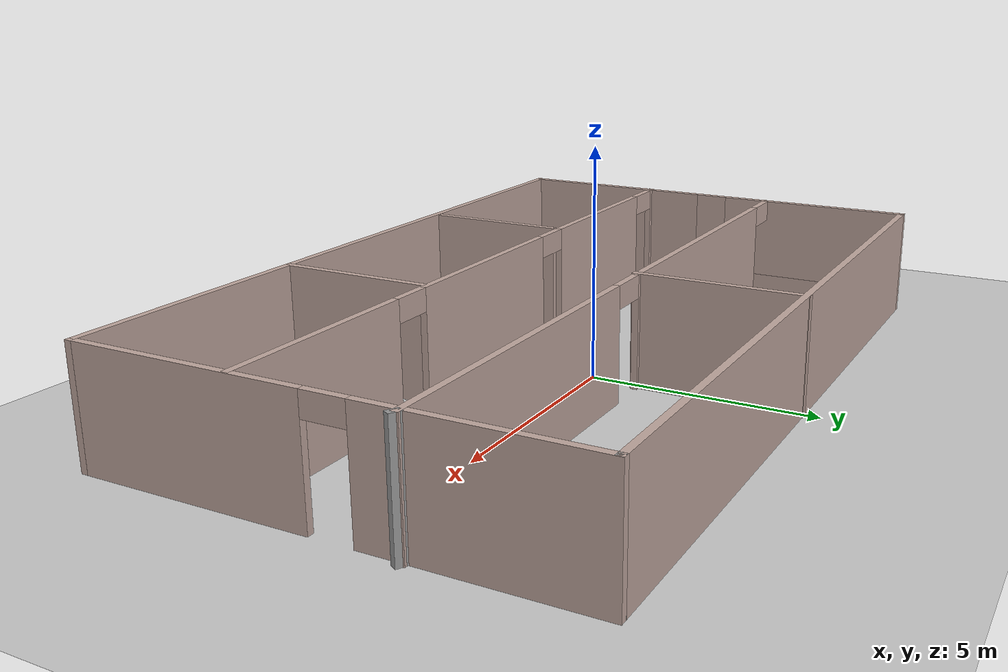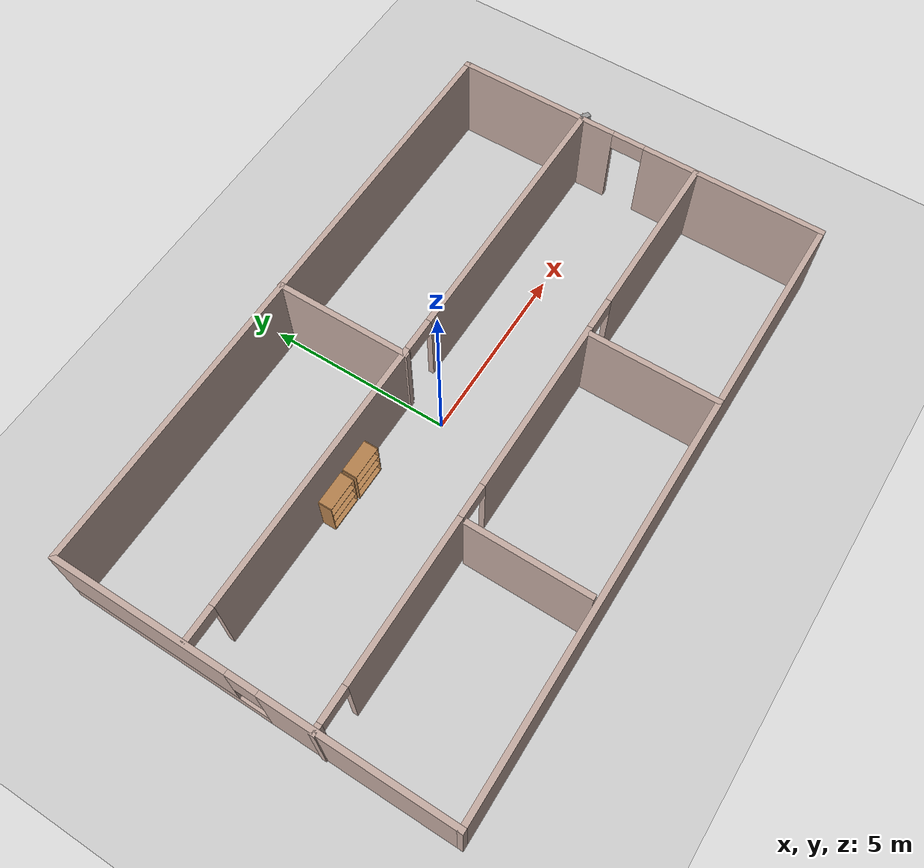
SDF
<sdf version="1.7">
 <world name="default">
  <light name="sun" type="directional">
   <pose>0 0 10 0 -0 0</pose>
   <diffuse>0.8 0.8 0.8 1</diffuse>
   <specular>0.2 0.2 0.2 1</specular>
   <attenuation>
    <range>1000</range>
    <constant>0.9</constant>
    <linear>0.01</linear>
    <quadratic>0.001</quadratic>
   </attenuation>
   <direction>-0.5 0.1 -0.9</direction>
   <spot><inner_angle>0</inner_angle><outer_angle>0</outer_angle><falloff>0</falloff></spot>
  </light>
  <model name="ground_plane">
   <static>1</static>
   <link name="link">
    <collision name="collision">
     <geometry><plane><normal>0 0 1</normal><size>100 100</size></plane></geometry>
     <surface>
      <contact><collide_bitmask>65535</collide_bitmask></contact>
      <friction><ode><mu>100</mu><mu2>50</mu2></ode></friction>
     </surface>
    </collision>
    <visual name="visual">
     <cast_shadows>0</cast_shadows>
     <geometry><plane><normal>0 0 1</normal><size>100 100</size></plane></geometry>
     <material>
      <script><uri>file://media/materials/scripts/gazebo.material</uri><name>Gazebo/Grey</name></script>
     </material>
    </visual>
   </link>
  </model>
  <gravity>0 0 -9.8</gravity>
  <magnetic_field>6e-06 2.3e-05 -4.2e-05</magnetic_field>
  <atmosphere type="adiabatic"/>
  <physics type="ode">
   <max_step_size>0.001</max_step_size>
   <real_time_factor>1</real_time_factor>
   <real_time_update_rate>1000</real_time_update_rate>
  </physics>
  <scene><ambient>0.4 0.4 0.4 1</ambient><background>0.7 0.7 0.7 1</background><shadows>1</shadows></scene>
  <spherical_coordinates>
   <surface_model>EARTH_WGS84</surface_model>
   <latitude_deg>0</latitude_deg>
   <longitude_deg>0</longitude_deg>
   <elevation>0</elevation>
   <heading_deg>0</heading_deg>
  </spherical_coordinates>
  <model name="laboratory_building">
   <pose>0.282575 -0.571406 -0 0 -0 0</pose>
   <link name="Wall_11">
    <collision name="Wall_11_Collision">
     <geometry><box><size>0.25 0.15 2.5</size></box></geometry>
     <pose>0 0 1.25 0 -0 0</pose>
    </collision>
    <visual name="Wall_11_Visual">
     <pose>0 0 1.25 0 -0 0</pose>
     <geometry><box><size>0.25 0.15 2.5</size></box></geometry>
     <material>
      <script><uri>file://media/materials/scripts/gazebo.material</uri><name>Gazebo/Grey</name></script>
      <ambient>1 1 1 1</ambient>
     </material>
     <meta><layer>0</layer></meta>
    </visual>
    <pose>8.34411 1.60627 0 0 -0 2.61799</pose>
   </link>
   <link name="Wall_12">
    <pose>0.00081 1.63127 0 0 -0 3.14159</pose>
    <visual name="Wall_12_Visual_0">
     <pose>-4.62093 0 1.25 0 -0 0</pose>
     <geometry><box><size>7.50815 0.15 2.5</size></box></geometry>
     <material>
      <script><uri>file://media/materials/scripts/gazebo.material</uri><name>Gazebo/Grey</name></script>
      <ambient>0.760784 0.662745 0.627451 1</ambient>
     </material>
     <meta><layer>0</layer></meta>
    </visual>
    <collision name="Wall_12_Collision_0">
     <geometry><box><size>7.50815 0.15 2.5</size></box></geometry>
     <pose>-4.62093 0 1.25 0 -0 0</pose>
    </collision>
    <visual name="Wall_12_Visual_1">
     <pose>3.72984 0 1.25 0 -0 0</pose>
     <geometry><box><size>7.39339 0.15 2.5</size></box></geometry>
     <material>
      <script><uri>file://media/materials/scripts/gazebo.material</uri><name>Gazebo/Grey</name></script>
      <ambient>0.760784 0.662745 0.627451 1</ambient>
     </material>
     <meta><layer>0</layer></meta>
    </visual>
    <collision name="Wall_12_Collision_1">
     <geometry><box><size>7.39339 0.15 2.5</size></box></geometry>
     <pose>3.72984 0 1.25 0 -0 0</pose>
    </collision>
    <visual name="Wall_12_Visual_2">
     <pose>8.35077 0 1.25 0 -0 0</pose>
     <geometry><box><size>0.04846 0.15 2.5</size></box></geometry>
     <material>
      <script><uri>file://media/materials/scripts/gazebo.material</uri><name>Gazebo/Grey</name></script>
      <ambient>0.760784 0.662745 0.627451 1</ambient>
     </material>
     <meta><layer>0</layer></meta>
    </visual>
    <collision name="Wall_12_Collision_2">
     <geometry><box><size>0.04846 0.15 2.5</size></box></geometry>
     <pose>8.35077 0 1.25 0 -0 0</pose>
    </collision>
    <visual name="Wall_12_Visual_3">
     <pose>-0.416854 0 2.25 0 -0 0</pose>
     <geometry><box><size>0.9 0.15 0.5</size></box></geometry>
     <material>
      <script><uri>file://media/materials/scripts/gazebo.material</uri><name>Gazebo/Grey</name></script>
      <ambient>0.760784 0.662745 0.627451 1</ambient>
     </material>
     <meta><layer>0</layer></meta>
    </visual>
    <collision name="Wall_12_Collision_3">
     <geometry><box><size>0.9 0.15 0.5</size></box></geometry>
     <pose>-0.416854 0 2.25 0 -0 0</pose>
    </collision>
    <visual name="Wall_12_Visual_4">
     <pose>7.87654 0 2.25 0 -0 0</pose>
     <geometry><box><size>0.9 0.15 0.5</size></box></geometry>
     <material>
      <script><uri>file://media/materials/scripts/gazebo.material</uri><name>Gazebo/Grey</name></script>
      <ambient>0.760784 0.662745 0.627451 1</ambient>
     </material>
     <meta><layer>0</layer></meta>
    </visual>
    <collision name="Wall_12_Collision_4">
     <geometry><box><size>0.9 0.15 0.5</size></box></geometry>
     <pose>7.87654 0 2.25 0 -0 0</pose>
    </collision>
   </link>
   <link name="Wall_14">
    <collision name="Wall_14_Collision">
     <geometry><box><size>3.75 0.15 2.5</size></box></geometry>
     <pose>0 0 1.25 0 -0 0</pose>
    </collision>
    <visual name="Wall_14_Visual">
     <pose>0 0 1.25 0 -0 0</pose>
     <geometry><box><size>3.75 0.15 2.5</size></box></geometry>
     <material>
      <script><uri>file://media/materials/scripts/gazebo.material</uri><name>Gazebo/Grey</name></script>
      <ambient>0.760784 0.662745 0.627451 1</ambient>
     </material>
     <meta><layer>0</layer></meta>
    </visual>
    <pose>-0.18917 3.38182 0 0 -0 -1.5708</pose>
   </link>
   <link name="Wall_16">
    <pose>-0.114865 -1.69563 0 0 -0 3.14159</pose>
    <visual name="Wall_16_Visual_0">
     <pose>-6.07448 0 1.25 0 -0 0</pose>
     <geometry><box><size>4.60104 0.15 2.5</size></box></geometry>
     <material>
      <script><uri>file://media/materials/scripts/gazebo.material</uri><name>Gazebo/Grey</name></script>
      <ambient>0.760784 0.662745 0.627451 1</ambient>
     </material>
     <meta><layer>0</layer></meta>
    </visual>
    <collision name="Wall_16_Collision_0">
     <geometry><box><size>4.60104 0.15 2.5</size></box></geometry>
     <pose>-6.07448 0 1.25 0 -0 0</pose>
    </collision>
    <visual name="Wall_16_Visual_1">
     <pose>-0.471846 0 1.25 0 -0 0</pose>
     <geometry><box><size>4.80424 0.15 2.5</size></box></geometry>
     <material>
      <script><uri>file://media/materials/scripts/gazebo.material</uri><name>Gazebo/Grey</name></script>
      <ambient>0.760784 0.662745 0.627451 1</ambient>
     </material>
     <meta><layer>0</layer></meta>
    </visual>
    <collision name="Wall_16_Collision_1">
     <geometry><box><size>4.80424 0.15 2.5</size></box></geometry>
     <pose>-0.471846 0 1.25 0 -0 0</pose>
    </collision>
    <visual name="Wall_16_Visual_2">
     <pose>5.00988 0 1.25 0 -0 0</pose>
     <geometry><box><size>4.35923 0.15 2.5</size></box></geometry>
     <material>
      <script><uri>file://media/materials/scripts/gazebo.material</uri><name>Gazebo/Grey</name></script>
      <ambient>0.760784 0.662745 0.627451 1</ambient>
     </material>
     <meta><layer>0</layer></meta>
    </visual>
    <collision name="Wall_16_Collision_2">
     <geometry><box><size>4.35923 0.15 2.5</size></box></geometry>
     <pose>5.00988 0 1.25 0 -0 0</pose>
    </collision>
    <visual name="Wall_16_Visual_3">
     <pose>8.23225 0 1.25 0 -0 0</pose>
     <geometry><box><size>0.285502 0.15 2.5</size></box></geometry>
     <material>
      <script><uri>file://media/materials/scripts/gazebo.material</uri><name>Gazebo/Grey</name></script>
      <ambient>0.760784 0.662745 0.627451 1</ambient>
     </material>
     <meta><layer>0</layer></meta>
    </visual>
    <collision name="Wall_16_Collision_3">
     <geometry><box><size>0.285502 0.15 2.5</size></box></geometry>
     <pose>8.23225 0 1.25 0 -0 0</pose>
    </collision>
    <visual name="Wall_16_Visual_4">
     <pose>-3.32396 0 2.25 0 -0 0</pose>
     <geometry><box><size>0.9 0.15 0.5</size></box></geometry>
     <material>
      <script><uri>file://media/materials/scripts/gazebo.material</uri><name>Gazebo/Grey</name></script>
      <ambient>0.760784 0.662745 0.627451 1</ambient>
     </material>
     <meta><layer>0</layer></meta>
    </visual>
    <collision name="Wall_16_Collision_4">
     <geometry><box><size>0.9 0.15 0.5</size></box></geometry>
     <pose>-3.32396 0 2.25 0 -0 0</pose>
    </collision>
    <visual name="Wall_16_Visual_5">
     <pose>2.38027 0 2.25 0 -0 0</pose>
     <geometry><box><size>0.9 0.15 0.5</size></box></geometry>
     <material>
      <script><uri>file://media/materials/scripts/gazebo.material</uri><name>Gazebo/Grey</name></script>
      <ambient>0.760784 0.662745 0.627451 1</ambient>
     </material>
     <meta><layer>0</layer></meta>
    </visual>
    <collision name="Wall_16_Collision_5">
     <geometry><box><size>0.9 0.15 0.5</size></box></geometry>
     <pose>2.38027 0 2.25 0 -0 0</pose>
    </collision>
    <visual name="Wall_16_Visual_6">
     <pose>7.6395 0 2.25 0 -0 0</pose>
     <geometry><box><size>0.9 0.15 0.5</size></box></geometry>
     <material>
      <script><uri>file://media/materials/scripts/gazebo.material</uri><name>Gazebo/Grey</name></script>
      <ambient>0.760784 0.662745 0.627451 1</ambient>
     </material>
     <meta><layer>0</layer></meta>
    </visual>
    <collision name="Wall_16_Collision_6">
     <geometry><box><size>0.9 0.15 0.5</size></box></geometry>
     <pose>7.6395 0 2.25 0 -0 0</pose>
    </collision>
   </link>
   <link name="Wall_18">
    <collision name="Wall_18_Collision">
     <geometry><box><size>3.25 0.15 2.5</size></box></geometry>
     <pose>0 0 1.25 0 -0 0</pose>
    </collision>
    <visual name="Wall_18_Visual">
     <pose>0 0 1.25 0 -0 0</pose>
     <geometry><box><size>3.25 0.15 2.5</size></box></geometry>
     <material>
      <script><uri>file://media/materials/scripts/gazebo.material</uri><name>Gazebo/Grey</name></script>
      <ambient>0.760784 0.662745 0.627451 1</ambient>
     </material>
     <meta><layer>0</layer></meta>
    </visual>
    <pose>-2.9806 -3.44791 0 0 -0 -1.5708</pose>
   </link>
   <link name="Wall_20">
    <collision name="Wall_20_Collision">
     <geometry><box><size>3.5 0.15 2.5</size></box></geometry>
     <pose>0 0 1.25 0 -0 0</pose>
    </collision>
    <visual name="Wall_20_Visual">
     <pose>0 0 1.25 0 -0 0</pose>
     <geometry><box><size>3.5 0.15 2.5</size></box></geometry>
     <material>
      <script><uri>file://media/materials/scripts/gazebo.material</uri><name>Gazebo/Grey</name></script>
      <ambient>0.760784 0.662745 0.627451 1</ambient>
     </material>
     <meta><layer>0</layer></meta>
    </visual>
    <pose>2.60227 -3.492 0 0 -0 -1.5708</pose>
   </link>
   <link name="Wall_5">
    <pose>-8.38219 -0.006819 0 0 -0 1.5708</pose>
    <visual name="Wall_5_Visual_0">
     <pose>-2.75915 0 1.25 0 -0 0</pose>
     <geometry><box><size>4.98169 0.15 2.5</size></box></geometry>
     <material>
      <script><uri>file://media/materials/scripts/gazebo.material</uri><name>Gazebo/Grey</name></script>
      <ambient>0.760784 0.662745 0.627451 1</ambient>
     </material>
     <meta><layer>0</layer></meta>
    </visual>
    <collision name="Wall_5_Collision_0">
     <geometry><box><size>4.98169 0.15 2.5</size></box></geometry>
     <pose>-2.75915 0 1.25 0 -0 0</pose>
    </collision>
    <visual name="Wall_5_Visual_1">
     <pose>2.49085 0 0.25 0 -0 0</pose>
     <geometry><box><size>5.51831 0.15 0.5</size></box></geometry>
     <material>
      <script><uri>file://media/materials/scripts/gazebo.material</uri><name>Gazebo/Grey</name></script>
      <ambient>0.760784 0.662745 0.627451 1</ambient>
     </material>
     <meta><layer>0</layer></meta>
    </visual>
    <collision name="Wall_5_Collision_1">
     <geometry><box><size>5.51831 0.15 0.5</size></box></geometry>
     <pose>2.49085 0 0.25 0 -0 0</pose>
    </collision>
    <visual name="Wall_5_Visual_2">
     <pose>2.89085 0 1.5 0 -0 0</pose>
     <geometry><box><size>4.71831 0.15 2</size></box></geometry>
     <material>
      <script><uri>file://media/materials/scripts/gazebo.material</uri><name>Gazebo/Grey</name></script>
      <ambient>0.760784 0.662745 0.627451 1</ambient>
     </material>
     <meta><layer>0</layer></meta>
    </visual>
    <collision name="Wall_5_Collision_2">
     <geometry><box><size>4.71831 0.15 2</size></box></geometry>
     <pose>2.89085 0 1.5 0 -0 0</pose>
    </collision>
    <visual name="Wall_5_Visual_3">
     <pose>0.131691 0 1.9 0 -0 0</pose>
     <geometry><box><size>0.8 0.15 1.2</size></box></geometry>
     <material>
      <script><uri>file://media/materials/scripts/gazebo.material</uri><name>Gazebo/Grey</name></script>
      <ambient>0.760784 0.662745 0.627451 1</ambient>
     </material>
     <meta><layer>0</layer></meta>
    </visual>
    <collision name="Wall_5_Collision_3">
     <geometry><box><size>0.8 0.15 1.2</size></box></geometry>
     <pose>0.131691 0 1.9 0 -0 0</pose>
    </collision>
   </link>
   <link name="Wall_6">
    <collision name="Wall_6_Collision">
     <geometry><box><size>16.75 0.15 2.5</size></box></geometry>
     <pose>0 0 1.25 0 -0 0</pose>
    </collision>
    <visual name="Wall_6_Visual">
     <pose>0 0 1.25 0 -0 0</pose>
     <geometry><box><size>16.75 0.15 2.5</size></box></geometry>
     <material>
      <script><uri>file://media/materials/scripts/gazebo.material</uri><name>Gazebo/Grey</name></script>
      <ambient>0.760784 0.662745 0.627451 1</ambient>
     </material>
     <meta><layer>0</layer></meta>
    </visual>
    <pose>-0.082187 5.16818 0 0 -0 0</pose>
   </link>
   <link name="Wall_7">
    <collision name="Wall_7_Collision">
     <geometry><box><size>0.15 0.15 2.5</size></box></geometry>
     <pose>0 0 1.25 0 -0 0</pose>
    </collision>
    <visual name="Wall_7_Visual">
     <pose>0 0 1.25 0 -0 0</pose>
     <geometry><box><size>0.15 0.15 2.5</size></box></geometry>
     <material>
      <script><uri>file://media/materials/scripts/gazebo.material</uri><name>Gazebo/Grey</name></script>
      <ambient>1 1 1 1</ambient>
     </material>
     <meta><layer>0</layer></meta>
    </visual>
    <pose>8.21781 5.16818 0 0 -0 0</pose>
   </link>
   <link name="Wall_8">
    <pose>8.21781 -0.006819 0 0 -0 -1.5708</pose>
    <visual name="Wall_8_Visual_0">
     <pose>-2.97653 0 1.25 0 -0 0</pose>
     <geometry><box><size>4.54694 0.15 2.5</size></box></geometry>
     <material>
      <script><uri>file://media/materials/scripts/gazebo.material</uri><name>Gazebo/Grey</name></script>
      <ambient>0.760784 0.662745 0.627451 1</ambient>
     </material>
     <meta><layer>0</layer></meta>
    </visual>
    <collision name="Wall_8_Collision_0">
     <geometry><box><size>4.54694 0.15 2.5</size></box></geometry>
     <pose>-2.97653 0 1.25 0 -0 0</pose>
    </collision>
    <visual name="Wall_8_Visual_1">
     <pose>2.72347 0 1.25 0 -0 0</pose>
     <geometry><box><size>5.05306 0.15 2.5</size></box></geometry>
     <material>
      <script><uri>file://media/materials/scripts/gazebo.material</uri><name>Gazebo/Grey</name></script>
      <ambient>0.760784 0.662745 0.627451 1</ambient>
     </material>
     <meta><layer>0</layer></meta>
    </visual>
    <collision name="Wall_8_Collision_1">
     <geometry><box><size>5.05306 0.15 2.5</size></box></geometry>
     <pose>2.72347 0 1.25 0 -0 0</pose>
    </collision>
    <visual name="Wall_8_Visual_2">
     <pose>-0.253057 0 2.25 0 -0 0</pose>
     <geometry><box><size>0.9 0.15 0.5</size></box></geometry>
     <material>
      <script><uri>file://media/materials/scripts/gazebo.material</uri><name>Gazebo/Grey</name></script>
      <ambient>0.760784 0.662745 0.627451 1</ambient>
     </material>
     <meta><layer>0</layer></meta>
    </visual>
    <collision name="Wall_8_Collision_2">
     <geometry><box><size>0.9 0.15 0.5</size></box></geometry>
     <pose>-0.253057 0 2.25 0 -0 0</pose>
    </collision>
   </link>
   <link name="Wall_9">
    <collision name="Wall_9_Collision">
     <geometry><box><size>16.75 0.15 2.5</size></box></geometry>
     <pose>0 0 1.25 0 -0 0</pose>
    </collision>
    <visual name="Wall_9_Visual">
     <pose>0 0 1.25 0 -0 0</pose>
     <geometry><box><size>16.75 0.15 2.5</size></box></geometry>
     <material>
      <script><uri>file://media/materials/scripts/gazebo.material</uri><name>Gazebo/Grey</name></script>
      <ambient>0.760784 0.662745 0.627451 1</ambient>
     </material>
     <meta><layer>0</layer></meta>
    </visual>
    <pose>-0.082187 -5.18182 0 0 -0 3.14159</pose>
   </link>
   <static>1</static>
  </model>
  <model name="Bookshelf">
   <static>1</static>
   <link name="link">
    <inertial><mass>1</mass></inertial>
    <collision name="back">
     <pose>0 0.005 0.6 0 -0 0</pose>
     <geometry><box><size>0.9 0.01 1.2</size></box></geometry>
    </collision>
    <visual name="visual1">
     <pose>0 0.005 0.6 0 -0 0</pose>
     <geometry><box><size>0.9 0.01 1.2</size></box></geometry>
     <material>
      <diffuse>1 1 1 1</diffuse>
      <script><uri>file://media/materials/scripts/gazebo.material</uri><name>Gazebo/Wood</name></script>
      <pbr>
       <metal>
        <albedo_map>https://fuel.gazebosim.org/1.0/openrobotics/models/bookshelf/3/files/bookshelf_diffuse.jpg</albedo_map>
       </metal>
      </pbr>
     </material>
    </visual>
    <collision name="left_side">
     <pose>0.45 -0.195 0.6 0 -0 0</pose>
     <geometry><box><size>0.02 0.4 1.2</size></box></geometry>
    </collision>
    <visual name="visual2">
     <pose>0.45 -0.195 0.6 0 -0 0</pose>
     <geometry><box><size>0.02 0.4 1.2</size></box></geometry>
     <material>
      <diffuse>1 1 1 1</diffuse>
      <script><uri>file://media/materials/scripts/gazebo.material</uri><name>Gazebo/Wood</name></script>
      <pbr>
       <metal>
        <albedo_map>https://fuel.gazebosim.org/1.0/openrobotics/models/bookshelf/3/files/bookshelf_diffuse.jpg</albedo_map>
       </metal>
      </pbr>
     </material>
    </visual>
    <collision name="right_side">
     <pose>-0.45 -0.195 0.6 0 -0 0</pose>
     <geometry><box><size>0.02 0.4 1.2</size></box></geometry>
    </collision>
    <visual name="visual3">
     <pose>-0.45 -0.195 0.6 0 -0 0</pose>
     <geometry><box><size>0.02 0.4 1.2</size></box></geometry>
     <material>
      <diffuse>1 1 1 1</diffuse>
      <script><uri>file://media/materials/scripts/gazebo.material</uri><name>Gazebo/Wood</name></script>
      <pbr>
       <metal>
        <albedo_map>https://fuel.gazebosim.org/1.0/openrobotics/models/bookshelf/3/files/bookshelf_diffuse.jpg</albedo_map>
       </metal>
      </pbr>
     </material>
    </visual>
    <collision name="bottom">
     <pose>0 -0.195 0.03 0 -0 0</pose>
     <geometry><box><size>0.88 0.4 0.06</size></box></geometry>
    </collision>
    <visual name="visual4">
     <pose>0 -0.195 0.03 0 -0 0</pose>
     <geometry><box><size>0.88 0.4 0.06</size></box></geometry>
     <material>
      <diffuse>1 1 1 1</diffuse>
      <script><uri>file://media/materials/scripts/gazebo.material</uri><name>Gazebo/Wood</name></script>
      <pbr>
       <metal>
        <albedo_map>https://fuel.gazebosim.org/1.0/openrobotics/models/bookshelf/3/files/bookshelf_diffuse.jpg</albedo_map>
       </metal>
      </pbr>
     </material>
    </visual>
    <collision name="top">
     <pose>0 -0.195 1.19 0 -0 0</pose>
     <geometry><box><size>0.88 0.4 0.02</size></box></geometry>
    </collision>
    <visual name="visual5">
     <pose>0 -0.195 1.19 0 -0 0</pose>
     <geometry><box><size>0.88 0.4 0.02</size></box></geometry>
     <material>
      <diffuse>1 1 1 1</diffuse>
      <script><uri>file://media/materials/scripts/gazebo.material</uri><name>Gazebo/Wood</name></script>
      <pbr>
       <metal>
        <albedo_map>https://fuel.gazebosim.org/1.0/openrobotics/models/bookshelf/3/files/bookshelf_diffuse.jpg</albedo_map>
       </metal>
      </pbr>
     </material>
    </visual>
    <collision name="low_shelf">
     <pose>0 -0.195 0.43 0 -0 0</pose>
     <geometry><box><size>0.88 0.4 0.02</size></box></geometry>
    </collision>
    <visual name="visual6">
     <pose>0 -0.195 0.43 0 -0 0</pose>
     <geometry><box><size>0.88 0.4 0.02</size></box></geometry>
     <material>
      <diffuse>1 1 1 1</diffuse>
      <script><uri>file://media/materials/scripts/gazebo.material</uri><name>Gazebo/Wood</name></script>
      <pbr>
       <metal>
        <albedo_map>https://fuel.gazebosim.org/1.0/openrobotics/models/bookshelf/3/files/bookshelf_diffuse.jpg</albedo_map>
       </metal>
      </pbr>
     </material>
    </visual>
    <collision name="high_shelf">
     <pose>0 -0.195 0.8 0 -0 0</pose>
     <geometry><box><size>0.88 0.4 0.02</size></box></geometry>
    </collision>
    <visual name="visual7">
     <pose>0 -0.195 0.8 0 -0 0</pose>
     <geometry><box><size>0.88 0.4 0.02</size></box></geometry>
     <material>
      <diffuse>1 1 1 1</diffuse>
      <script><uri>file://media/materials/scripts/gazebo.material</uri><name>Gazebo/Wood</name></script>
      <pbr>
       <metal>
        <albedo_map>https://fuel.gazebosim.org/1.0/openrobotics/models/bookshelf/3/files/bookshelf_diffuse.jpg</albedo_map>
       </metal>
      </pbr>
     </material>
    </visual>
   </link>
   <pose>-2.25592 0.988675 0 0 -0 0</pose>
  </model>
  <model name="Bookshelf_clone">
   <static>1</static>
   <link name="link">
    <inertial><mass>1</mass></inertial>
    <collision name="back">
     <pose>0 0.005 0.6 0 -0 0</pose>
     <geometry><box><size>0.9 0.01 1.2</size></box></geometry>
    </collision>
    <visual name="visual1">
     <pose>0 0.005 0.6 0 -0 0</pose>
     <geometry><box><size>0.9 0.01 1.2</size></box></geometry>
     <material>
      <diffuse>1 1 1 1</diffuse>
      <script><uri>file://media/materials/scripts/gazebo.material</uri><name>Gazebo/Wood</name></script>
      <pbr>
       <metal>
        <albedo_map>https://fuel.gazebosim.org/1.0/openrobotics/models/bookshelf/3/files/bookshelf_diffuse.jpg</albedo_map>
       </metal>
      </pbr>
     </material>
    </visual>
    <collision name="left_side">
     <pose>0.45 -0.195 0.6 0 -0 0</pose>
     <geometry><box><size>0.02 0.4 1.2</size></box></geometry>
    </collision>
    <visual name="visual2">
     <pose>0.45 -0.195 0.6 0 -0 0</pose>
     <geometry><box><size>0.02 0.4 1.2</size></box></geometry>
     <material>
      <diffuse>1 1 1 1</diffuse>
      <script><uri>file://media/materials/scripts/gazebo.material</uri><name>Gazebo/Wood</name></script>
      <pbr>
       <metal>
        <albedo_map>https://fuel.gazebosim.org/1.0/openrobotics/models/bookshelf/3/files/bookshelf_diffuse.jpg</albedo_map>
       </metal>
      </pbr>
     </material>
    </visual>
    <collision name="right_side">
     <pose>-0.45 -0.195 0.6 0 -0 0</pose>
     <geometry><box><size>0.02 0.4 1.2</size></box></geometry>
    </collision>
    <visual name="visual3">
     <pose>-0.45 -0.195 0.6 0 -0 0</pose>
     <geometry><box><size>0.02 0.4 1.2</size></box></geometry>
     <material>
      <diffuse>1 1 1 1</diffuse>
      <script><uri>file://media/materials/scripts/gazebo.material</uri><name>Gazebo/Wood</name></script>
      <pbr>
       <metal>
        <albedo_map>https://fuel.gazebosim.org/1.0/openrobotics/models/bookshelf/3/files/bookshelf_diffuse.jpg</albedo_map>
       </metal>
      </pbr>
     </material>
    </visual>
    <collision name="bottom">
     <pose>0 -0.195 0.03 0 -0 0</pose>
     <geometry><box><size>0.88 0.4 0.06</size></box></geometry>
    </collision>
    <visual name="visual4">
     <pose>0 -0.195 0.03 0 -0 0</pose>
     <geometry><box><size>0.88 0.4 0.06</size></box></geometry>
     <material>
      <diffuse>1 1 1 1</diffuse>
      <script><uri>file://media/materials/scripts/gazebo.material</uri><name>Gazebo/Wood</name></script>
      <pbr>
       <metal>
        <albedo_map>https://fuel.gazebosim.org/1.0/openrobotics/models/bookshelf/3/files/bookshelf_diffuse.jpg</albedo_map>
       </metal>
      </pbr>
     </material>
    </visual>
    <collision name="top">
     <pose>0 -0.195 1.19 0 -0 0</pose>
     <geometry><box><size>0.88 0.4 0.02</size></box></geometry>
    </collision>
    <visual name="visual5">
     <pose>0 -0.195 1.19 0 -0 0</pose>
     <geometry><box><size>0.88 0.4 0.02</size></box></geometry>
     <material>
      <diffuse>1 1 1 1</diffuse>
      <script><uri>file://media/materials/scripts/gazebo.material</uri><name>Gazebo/Wood</name></script>
      <pbr>
       <metal>
        <albedo_map>https://fuel.gazebosim.org/1.0/openrobotics/models/bookshelf/3/files/bookshelf_diffuse.jpg</albedo_map>
       </metal>
      </pbr>
     </material>
    </visual>
    <collision name="low_shelf">
     <pose>0 -0.195 0.43 0 -0 0</pose>
     <geometry><box><size>0.88 0.4 0.02</size></box></geometry>
    </collision>
    <visual name="visual6">
     <pose>0 -0.195 0.43 0 -0 0</pose>
     <geometry><box><size>0.88 0.4 0.02</size></box></geometry>
     <material>
      <diffuse>1 1 1 1</diffuse>
      <script><uri>file://media/materials/scripts/gazebo.material</uri><name>Gazebo/Wood</name></script>
      <pbr>
       <metal>
        <albedo_map>https://fuel.gazebosim.org/1.0/openrobotics/models/bookshelf/3/files/bookshelf_diffuse.jpg</albedo_map>
       </metal>
      </pbr>
     </material>
    </visual>
    <collision name="high_shelf">
     <pose>0 -0.195 0.8 0 -0 0</pose>
     <geometry><box><size>0.88 0.4 0.02</size></box></geometry>
    </collision>
    <visual name="visual7">
     <pose>0 -0.195 0.8 0 -0 0</pose>
     <geometry><box><size>0.88 0.4 0.02</size></box></geometry>
     <material>
      <diffuse>1 1 1 1</diffuse>
      <script><uri>file://media/materials/scripts/gazebo.material</uri><name>Gazebo/Wood</name></script>
      <pbr>
       <metal>
        <albedo_map>https://fuel.gazebosim.org/1.0/openrobotics/models/bookshelf/3/files/bookshelf_diffuse.jpg</albedo_map>
       </metal>
      </pbr>
     </material>
    </visual>
   </link>
   <pose>-3.22302 1.01009 0 0 -0 0</pose>
  </model>
 </world>
</sdf>
